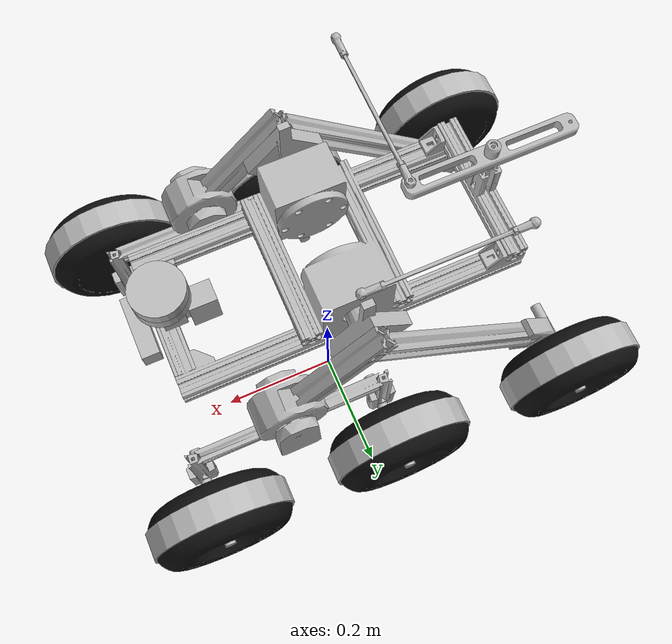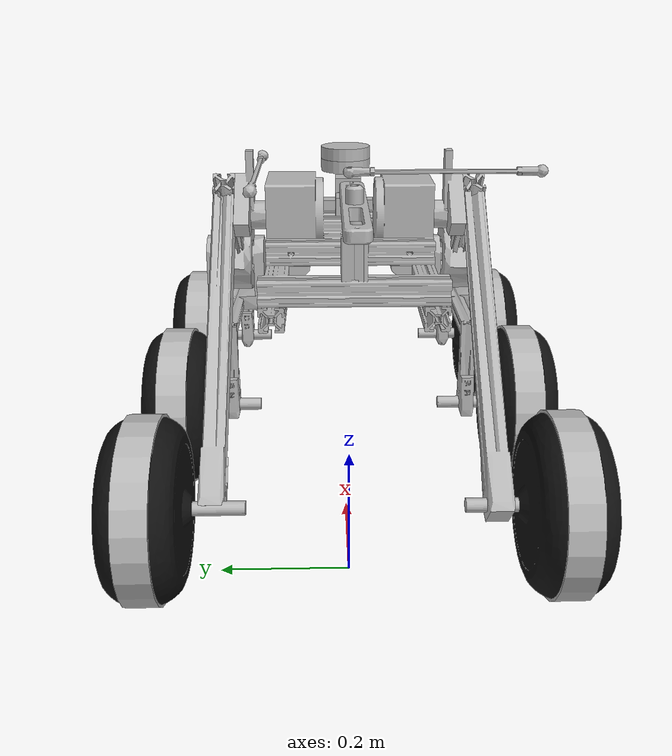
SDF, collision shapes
<?xml version='1.0'?>
<sdf version='1.5'>
  <model name="morty">
    <static>false</static>
    <pose>0 0 0.5 0 0 0</pose>

    <link name="frame">
      <pose>0 0 0 0 0 0</pose>

      <inertial>
        <pose>-0.007506 0.000432 0.042077 0 0 0</pose>
        <mass>10.0</mass>
        <inertia>
          <ixx>0.07759446</ixx>
          <iyy>0.134953099</iyy>
          <izz>0.182993088</izz>
          <ixz>0.004729512</ixz>
          <ixy>-0.000038673</ixy>
          <iyz>0.000110587</iyz>
        </inertia>
      </inertial>

      <collision name="collision">
        <pose>0 0 0 0 0 0</pose>
        <geometry>
          <mesh>
            <uri>model://morty/meshes/frame-lod-3.dae</uri>
          </mesh>
        </geometry>
      </collision>

      <visual name="visual">
        <geometry>
          <mesh>
            <uri>model://morty/meshes/frame-lod-2.dae</uri>
          </mesh>
        </geometry>
      </visual>
    </link>

    <!-- Left side. -->
    <link name="rocker_axis_left">
      <pose>0 0.075 0.065 0 0 3.141592654</pose>

      <inertial>
        <pose>-0.000000 -0.047414 0.007917 0 0 0</pose>
        <mass>0.5</mass>
        <inertia>
          <ixx>0.000581951</ixx>
          <iyy>0.00039783</iyy>
          <izz>0.00055294</izz>
          <ixy>0.0</ixy>
          <ixz>0.0</ixz>
          <iyz>0.000036374</iyz>
        </inertia>
      </inertial>

      <collision name="collision">
        <pose>0 0 0 0 0 0</pose>
        <geometry>
          <mesh>
            <uri>model://morty/meshes/rocker-axis-lod-1.dae</uri>
          </mesh>
        </geometry>
      </collision>

      <visual name="visual">
        <pose>0 0 0 0 0 0</pose>
        <geometry>
          <mesh>
            <uri>model://morty/meshes/rocker-axis-lod-2.dae</uri>
          </mesh>
        </geometry>
      </visual>
    </link>

    <link name="rocker_left_front">
      <pose>-0.01 0.167 0.111 0 0 3.141592654</pose>

      <inertial>
        <pose>-0.103843 0.000207 -0.080442 0 0 0</pose>
        <mass>1.5</mass>
        <inertia>
          <ixx>0.0091575</ixx>
          <iyy>0.01351175</iyy>
          <izz>0.00480425</izz>
          <ixy>0.000048607</ixy>
          <ixz>-0.005074536</ixz>
          <iyz>-0.00003325</iyz>
        </inertia>
      </inertial>

      <collision name="collision">
        <pose>0 0 0 0 0 0</pose>
        <geometry>
          <mesh>
            <uri>model://morty/meshes/rocker-front-lod-1.dae</uri>
          </mesh>
        </geometry>
      </collision>

      <visual name="visual">
        <geometry>
          <mesh>
            <uri>model://morty/meshes/rocker-front-lod-2.dae</uri>
          </mesh>
        </geometry>
      </visual>
    </link>

    <link name="rocker_left_rear">
      <pose>0.01 0.167 0.09 0 0 3.141592654</pose>

      <inertial>
        <pose>0.180409 -0.000496 -0.180775 0 0 0</pose>
        <mass>0.5</mass>
        <inertia>
          <ixx>0.004664009</ixx>
          <iyy>0.009240307</iyy>
          <izz>0.004668302</izz>
          <ixy>-0.000000849</ixy>
          <ixz>0.004392335</ixz>
          <iyz>0.000000165</iyz>
        </inertia>
      </inertial>

      <collision name="collision">
        <pose>0 0 0 0 0 0</pose>
        <geometry>
          <mesh>
            <uri>model://morty/meshes/rocker-rear-lod-1.dae</uri>
          </mesh>
        </geometry>
      </collision>

      <visual name="visual">
        <geometry>
          <mesh>
            <uri>model://morty/meshes/rocker-rear-lod-2.dae</uri>
          </mesh>
        </geometry>
      </visual>
    </link>

    <link name="bogie_left">
      <pose>0.128 0.167 -0.02625 0 0 0</pose>

      <inertial>
        <pose>-0.000000 -0.000283 -0.065016 0 0 0</pose>
        <mass>0.5</mass>
        <inertia>
          <ixx>0.001971824</ixx>
          <iyy>0.004614839</iyy>
          <izz>0.003279392</izz>
          <ixy>0.000000012</ixy>
          <ixz>0.0</ixz>
          <iyz>0.000009194</iyz>
        </inertia>
      </inertial>

      <collision name="collision">
        <geometry>
          <mesh>
            <uri>model://morty/meshes/bogie-lod-1.dae</uri>
          </mesh>
        </geometry>
      </collision>

      <visual name="visual">
        <geometry>
          <mesh>
            <uri>model://morty/meshes/bogie-lod-2.dae</uri>
          </mesh>
        </geometry>
      </visual>
    </link>

    <!-- Wheels -->
    <include>
      <uri>model://wheel_hhj30nt36v</uri>
      <pose>0.27477 0.14 -0.20783 1.570796327 0 0</pose>
      <name>wheel_left_front</name>
    </include>

    <include>
      <uri>model://wheel_hhj30nt36v</uri>
      <pose>-0.01596 0.14 -0.20783 1.570796327 0 0</pose>
      <name>wheel_left_middle</name>
    </include>

    <include>
      <uri>model://wheel_hhj30nt36v</uri>
      <pose>-0.30884 0.14 -0.20783 1.570796327 0 0</pose>
      <name>wheel_left_rear</name>
    </include>

    <!-- Joints. -->
    <joint type="revolute" name="left_frame_axis">
      <pose>0 0 0 0 0 0</pose>
      <parent>frame</parent>
      <child>rocker_axis_left</child>
      <axis>
        <xyz>0 1 0</xyz>
      </axis>
    </joint>
    <joint type="revolute" name="left_axis_rocker_rear">
      <pose>0 0 0 0 0 0</pose>
      <child>rocker_left_rear</child>
      <parent>rocker_axis_left</parent>
      <axis>
        <xyz>1 0 0</xyz>
        <limit>
          <lower>0</lower>
          <upper>0</upper>
        </limit>
      </axis>
    </joint>
    <joint type="revolute" name="left_axis_rocker_front">
      <pose>0 0 0 0 0 0</pose>
      <child>rocker_left_front</child>
      <parent>rocker_axis_left</parent>
      <axis>
        <xyz>1 0 0</xyz>
        <limit>
          <lower>0</lower>
          <upper>0</upper>
        </limit>
      </axis>
    </joint>
    <joint type="revolute" name="left_rocker_front_bogie">
      <pose>0 0 0 0 0 0</pose>
      <child>bogie_left</child>
      <parent>rocker_left_front</parent>
      <axis>
        <xyz>0 1 0</xyz>
        <limit>
          <lower>-0.785398163</lower>
          <upper>1.570796327</upper>
        </limit>
      </axis>
    </joint>
    <joint type="revolute" name="left_bogie_wheel_front">
      <pose>0 0 0.07 0 0 0</pose>
      <child>wheel_left_front::axis</child>
      <parent>bogie_left</parent>
      <axis>
        <xyz>1 0 0</xyz>
        <limit>
          <lower>0</lower>
          <upper>0</upper>
        </limit>
      </axis>
    </joint>
    <joint type="revolute" name="left_bogie_wheel_middle">
      <pose>0 0 0.07 0 0 0</pose>
      <child>wheel_left_middle::axis</child>
      <parent>bogie_left</parent>
      <axis>
        <xyz>1 0 0</xyz>
        <limit>
          <lower>0</lower>
          <upper>0</upper>
        </limit>
      </axis>
    </joint>
    <joint type="revolute" name="left_rocker_wheel_rear">
      <pose>0 0 0.07 0 0 0</pose>
      <child>wheel_left_rear::axis</child>
      <parent>rocker_left_rear</parent>
      <axis>
        <xyz>1 0 0</xyz>
        <limit>
          <lower>0</lower>
          <upper>0</upper>
        </limit>
      </axis>
    </joint>

    <!-- Right side. -->
    <link name="rocker_axis_right">
      <pose>0 -0.075 0.065 0 0 0</pose>

      <inertial>
        <pose>-0.000000 -0.047414 0.007917 0 0 0</pose>
        <mass>0.5</mass>
        <inertia>
          <ixx>0.000581951</ixx>
          <iyy>0.00039783</iyy>
          <izz>0.00055294</izz>
          <ixy>0.0</ixy>
          <ixz>0.0</ixz>
          <iyz>0.000036374</iyz>
        </inertia>
      </inertial>

      <collision name="collision">
        <pose>0 0 0 0 0 0</pose>
        <geometry>
          <mesh>
            <uri>model://morty/meshes/rocker-axis-lod-1.dae</uri>
          </mesh>
        </geometry>
      </collision>

      <visual name="visual">
        <pose>0 0 0 0 0 0</pose>
        <geometry>
          <mesh>
            <uri>model://morty/meshes/rocker-axis-lod-2.dae</uri>
          </mesh>
        </geometry>
      </visual>
    </link>

    <link name="rocker_right_front">
      <pose>-0.01 -0.167 0.111 0 0 3.141592654</pose>

      <inertial>
        <pose>-0.103843 0.000207 -0.080442 0 0 0</pose>
        <mass>1.5</mass>
        <inertia>
          <ixx>0.0091575</ixx>
          <iyy>0.01351175</iyy>
          <izz>0.00480425</izz>
          <ixy>0.000048607</ixy>
          <ixz>-0.005074536</ixz>
          <iyz>-0.00003325</iyz>
        </inertia>
      </inertial>

      <collision name="collision">
        <pose>0 0 0 0 0 0</pose>
        <geometry>
          <mesh>
            <uri>model://morty/meshes/rocker-front-lod-1.dae</uri>
          </mesh>
        </geometry>
      </collision>

      <visual name="visual">
        <geometry>
          <mesh>
            <uri>model://morty/meshes/rocker-front-lod-2.dae</uri>
          </mesh>
        </geometry>
      </visual>
    </link>

    <link name="rocker_right_rear">
      <pose>-0.01 -0.167 0.089 0 0 3.141592654</pose>

      <inertial>
        <pose>0.180409 -0.000496 -0.180775 0 0 0</pose>
        <mass>0.5</mass>
        <inertia>
          <ixx>0.004664009</ixx>
          <iyy>0.009240307</iyy>
          <izz>0.004668302</izz>
          <ixy>-0.000000849</ixy>
          <ixz>0.004392335</ixz>
          <iyz>0.000000165</iyz>
        </inertia>
      </inertial>

      <collision name="collision">
        <pose>0 0 0 0 0 0</pose>
        <geometry>
          <mesh>
            <uri>model://morty/meshes/rocker-rear-lod-1.dae</uri>
          </mesh>
        </geometry>
      </collision>

      <visual name="visual">
        <geometry>
          <mesh>
            <uri>model://morty/meshes/rocker-rear-lod-2.dae</uri>
          </mesh>
        </geometry>
      </visual>
    </link>

    <link name="bogie_right">
      <pose>0.128 -0.167 -0.02625 0 0 0</pose>

      <inertial>
        <pose>-0.000000 -0.000283 -0.065016 0 0 0</pose>
        <mass>0.5</mass>
        <inertia>
          <ixx>0.001971824</ixx>
          <iyy>0.004614839</iyy>
          <izz>0.003279392</izz>
          <ixy>0.000000012</ixy>
          <ixz>0.0</ixz>
          <iyz>0.000009194</iyz>
        </inertia>
      </inertial>

      <collision name="collision">
        <geometry>
          <mesh>
            <uri>model://morty/meshes/bogie-lod-1.dae</uri>
          </mesh>
        </geometry>
      </collision>

      <visual name="visual">
        <geometry>
          <mesh>
            <uri>model://morty/meshes/bogie-lod-2.dae</uri>
          </mesh>
        </geometry>
      </visual>
    </link>

    <!-- Wheels -->
    <include>
      <uri>model://wheel_hhj30nt36v</uri>
      <pose>0.27477 -0.14 -0.20783 -1.570796327 0 0</pose>
      <name>wheel_right_front</name>
    </include>

    <include>
      <uri>model://wheel_hhj30nt36v</uri>
      <pose>-0.01596 -0.14 -0.20783 -1.570796327 0 0</pose>
      <name>wheel_right_middle</name>
    </include>

    <include>
      <uri>model://wheel_hhj30nt36v</uri>
      <pose>-0.30884 -0.14 -0.20783 -1.570796327 0 0</pose>
      <name>wheel_right_rear</name>
    </include>

    <!-- Joints. -->
    <joint type="revolute" name="right_frame_axis">
      <pose>0 0 0 0 0 0</pose>
      <parent>frame</parent>
      <child>rocker_axis_right</child>
      <axis>
        <xyz>0 1 0</xyz>
      </axis>
    </joint>
    <joint type="revolute" name="right_axis_rocker_rear">
      <pose>0 0 0 0 0 0</pose>
      <child>rocker_right_rear</child>
      <parent>rocker_axis_right</parent>
      <axis>
        <xyz>1 0 0</xyz>
        <limit>
          <lower>0</lower>
          <upper>0</upper>
        </limit>
      </axis>
    </joint>
    <joint type="revolute" name="right_axis_rocker_front">
      <pose>0 0 0 0 0 0</pose>
      <child>rocker_right_front</child>
      <parent>rocker_axis_right</parent>
      <axis>
        <xyz>1 0 0</xyz>
        <limit>
          <lower>0</lower>
          <upper>0</upper>
        </limit>
      </axis>
    </joint>
    <joint type="revolute" name="right_rocker_front_bogie">
      <pose>0 0 0 0 0 0</pose>
      <child>bogie_right</child>
      <parent>rocker_right_front</parent>
      <axis>
        <xyz>0 1 0</xyz>
        <limit>
          <lower>-0.785398163</lower>
          <upper>1.570796327</upper>
        </limit>
      </axis>
    </joint>
    <joint type="revolute" name="right_bogie_wheel_front">
      <pose>0 0 0.07 0 0 0</pose>
      <child>wheel_right_front::axis</child>
      <parent>bogie_right</parent>
      <axis>
        <xyz>1 0 0</xyz>
        <limit>
          <lower>0</lower>
          <upper>0</upper>
        </limit>
      </axis>
    </joint>
    <joint type="revolute" name="right_bogie_wheel_middle">
      <pose>0 0 0.07 0 0 0</pose>
      <child>wheel_right_middle::axis</child>
      <parent>bogie_right</parent>
      <axis>
        <xyz>1 0 0</xyz>
        <limit>
          <lower>0</lower>
          <upper>0</upper>
        </limit>
      </axis>
    </joint>
    <joint type="revolute" name="right_rocker_wheel_rear">
      <pose>0 0 0.07 0 0 0</pose>
      <child>wheel_right_rear::axis</child>
      <parent>rocker_right_rear</parent>
      <axis>
        <xyz>1 0 0</xyz>
        <limit>
          <lower>0</lower>
          <upper>0</upper>
        </limit>
      </axis>
    </joint>

    <!-- Diff -->
    <!-- Sensors -->
    <link name="diff_connector">
      <pose>-0.2348023 0 0.1239466 0 0 0</pose>

      <inertial>
        <pose>-0.000000 -0.000001 0.000466 0 0 0</pose>
        <mass>0.1</mass>
        <inertia>
          <ixx>0.000574568</ixx>
          <iyy>0.000012108</iyy>
          <izz>0.000581622</izz>
          <ixy>0.0</ixy>
          <ixz>0.0</ixz>
          <iyz>-0.000000041</iyz>
        </inertia>
      </inertial>

      <visual name="visual">
        <pose>0 0 0 0 0 0</pose>
        <geometry>
          <mesh>
            <uri>model://morty/meshes/diff-connector-lod-2.dae</uri>
          </mesh>
        </geometry>
      </visual>

      <collision name="collision">
        <pose>0 0 0 0 0 0</pose>
        <geometry>
          <mesh>
            <uri>model://morty/meshes/diff-connector-lod-1.dae</uri>
          </mesh>
        </geometry>
      </collision>

    </link>

    <link name="diff_bar_left">
      <pose>-0.1170713 0.115 0.1441726 0 0 0</pose>

      <inertial>
        <pose>-0.000022 -0.000077 -0.000075 0 0 0</pose>
        <mass>0.1</mass>
        <inertia>
          <ixx>0.000001273</ixx>
          <iyy>0.000770182</iyy>
          <izz>0.000770091</izz>
          <ixy>0.000000909</ixy>
          <ixz>-0.000000909</ixz>
          <iyz>0.0</iyz>
        </inertia>
      </inertial>

      <visual name="visual">
        <pose>0 0 0 0 0 0</pose>
        <geometry>
          <mesh>
            <uri>model://morty/meshes/diff-bar-left-lod-2.dae</uri>
          </mesh>
        </geometry>
      </visual>

      <collision name="collision">
        <pose>0 0 0 0 0 0</pose>
        <geometry>
          <mesh>
            <uri>model://morty/meshes/diff-bar-left-lod-1.dae</uri>
          </mesh>
        </geometry>
      </collision>
    </link>

    <link name="diff_bar_right">
      <pose>-0.1170713 -0.115 0.1441726 0 0 0</pose>

      <inertial>
        <pose>-0.000022 -0.000077 -0.000075 0 0 0</pose>
        <mass>0.1</mass>
        <inertia>
          <ixx>0.000001273</ixx>
          <iyy>0.000770182</iyy>
          <izz>0.000770091</izz>
          <ixy>0.000000909</ixy>
          <ixz>-0.000000909</ixz>
          <iyz>0.0</iyz>
        </inertia>
      </inertial>

      <visual name="visual">
        <pose>0 0 0 0 0 0</pose>
        <geometry>
          <mesh>
            <uri>model://morty/meshes/diff-bar-right-lod-2.dae</uri>
          </mesh>
        </geometry>
      </visual>

      <collision name="collision">
        <pose>0 0 0 0 0 0</pose>
        <geometry>
          <mesh>
            <uri>model://morty/meshes/diff-bar-right-lod-1.dae</uri>
          </mesh>
        </geometry>
      </collision>

    </link>

    <joint type="revolute" name="frame_diff">
      <child>diff_connector</child>
      <parent>frame</parent>
      <axis>
        <xyz>0 0 1</xyz>
      </axis>
    </joint>
    <joint type="ball" name="diff_connector_bar_left">
      <pose>0.1168 0 0 0 0 0</pose>
      <child>diff_bar_left</child>
      <parent>diff_connector</parent>
    </joint>
    <joint type="ball" name="diff_bar_rocker_left">
      <pose>-0.1170713 0 0 0 0 0</pose>
      <child>diff_bar_left</child>
      <parent>rocker_axis_left</parent>
    </joint>
    <joint type="ball" name="diff_connector_bar_right">
      <pose>0.1168 0 0 0 0 0</pose>
      <child>diff_bar_right</child>
      <parent>diff_connector</parent>
    </joint>
    <joint type="ball" name="diff_bar_rocker_right">
      <pose>-0.1170713 0 0 0 0 0</pose>
      <child>diff_bar_right</child>
      <parent>rocker_axis_right</parent>
    </joint>

    <include>
      <uri>model://laser_leveling</uri>
      <pose>0.2 0 0 0 0 0</pose>
      <parent>frame</parent>
    </include>
    <include>
      <uri>model://rplidar_a2_m6</uri>
      <pose>0.226 0 0.085 0 0 0</pose>
      <parent>laser_leveling</parent>
    </include>
    <include>
      <uri>model://logitech_c920</uri>
      <pose>0.28 0 0 0 0 0</pose>
      <parent>frame</parent>
    </include>

    <!-- Joints for the sensors. -->
    <joint type="fixed" name="mount_leveling">
      <child>laser_leveling::dynamixel_roll</child>
      <parent>frame</parent>
    </joint>
    <joint type="fixed" name="laser_leveling">
      <child>rplidar_a2_m6::case</child>
      <parent>laser_leveling::mount_dynamixel_pitch</parent>
    </joint>
    <joint type="fixed" name="mount_camera">
      <child>logitech_c920::case</child>
      <parent>frame</parent>
    </joint>

    <plugin name="morty_motor_controller" filename="libgazebo-francor-morty-motor-controller-plugin.so">
      <motorLeftFrontJoint>wheel_left_front::motor</motorLeftFrontJoint>
      <motorLeftMidJoint>wheel_left_middle::motor</motorLeftMidJoint>
      <motorLeftRearJoint>wheel_left_rear::motor</motorLeftRearJoint>
      <motorRightFrontJoint>wheel_right_front::motor</motorRightFrontJoint>
      <motorRightMidJoint>wheel_right_middle::motor</motorRightMidJoint>
      <motorRightRearJoint>wheel_right_rear::motor</motorRightRearJoint>

      <motorLeftFrontPos>0.27477 0.17 0</motorLeftFrontPos>
      <motorLeftMidPos>0.01596 0.17 0</motorLeftMidPos>
      <motorLeftRearPos>-0.30884 0.17 0</motorLeftRearPos>
      <motorRightFrontPos>0.27477 -0.17 0</motorRightFrontPos>
      <motorRightMidPos>0.01596 -0.17 0</motorRightMidPos>
      <motorRightRearPos>-0.30884 -0.17 0</motorRightRearPos>

      <motorLeftFrontDiameter>0.22</motorLeftFrontDiameter>
      <motorLeftMidDiameter>0.22</motorLeftMidDiameter>
      <motorLeftRearDiameter>0.22</motorLeftRearDiameter>
      <motorRightFrontDiameter>0.22</motorRightFrontDiameter>
      <motorRightMidDiameter>0.22</motorRightMidDiameter>
      <motorRightRearDiameter>0.22</motorRightRearDiameter>

      <rosNamespace>morty</rosNamespace>
      <velocityTopic>velocity</velocityTopic>
      <odometryTopic>odom</odometryTopic>
    </plugin>

  </model>
</sdf>

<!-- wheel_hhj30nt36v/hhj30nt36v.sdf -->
<sdf version='1.5'>
  <model name="wheel_hhj30nt36v">
    <static>false</static>
    <pose>0 0 0 0 0 0</pose>

    <!-- The axis of this wheel. -->
    <link name="axis">
      <pose>0 0 -0.1 0 0 0</pose>

      <inertial>
        <pose>0 0 0.0464 0 0 0</pose>
        <mass>0.3</mass>
        <inertia>
          <ixx>0.00055056</ixx>
          <iyy>0.00055086</iyy>
          <izz>0.00001032</izz>
          <ixy>0.0</ixy>
          <ixz>0.0</ixz>
          <iyz>-0.00000345</iyz>
        </inertia>
      </inertial>

      <collision name="collision">
        <pose>0 0 0.0364 0 0 0</pose>
        <geometry>
          <cylinder>
            <radius>0.0084</radius>
            <length>0.1528</length>
          </cylinder>
        </geometry>
      </collision>

      <visual name="visual">
        <pose>0 0 0 0 0 0</pose>
        <geometry>
          <mesh>
            <uri>model://wheel_hhj30nt36v/meshes/axis.dae</uri>
          </mesh>
        </geometry>
      </visual>
    </link>

    <!-- The rotating part of this wheel. -->
    <link name="wheel">
      <pose>0 0 -0.1 0 0 0</pose>

      <inertial>
        <pose>-0.000000 -0.000000 0.002033 0 0 0</pose>
        <mass>3.7</mass>
        <inertia>
          <ixx>0.012247851</ixx>
          <iyy>0.012247851</iyy>
          <izz>0.020656847</izz>
          <ixy>0.0</ixy>
          <ixz>0.0</ixz>
          <iyz>0.0</iyz>
        </inertia>
      </inertial>

      <collision name="collision">
        <pose>0 0 0 0 0 0</pose>
        <geometry>
          <cylinder>
            <radius>0.11</radius>
            <length>0.04</length>
          </cylinder>
        </geometry>
        <max_contacts>10</max_contacts>
        <surface>
          <friction>
            <torsional>
              <coefficient>0.5</coefficient>
              <surface_radius>0.11</surface_radius>
              <use_patch_radius>false</use_patch_radius>
              <ode>
                <slip>0.02</slip>
              </ode>
            </torsional>
            <ode>
              <mu>0.45</mu>
              <mu2>0.45</mu2>
              <fdir1>1 1 1</fdir1> <!-- TODO: not clear what happen if two axes are used. -->
              <slip1>0.02</slip1>
              <slip2>0.02</slip2>
            </ode>
          </friction>
          <contact>
            <ode>
              <min_depth>0.005</min_depth>
            </ode>
          </contact>
        </surface>
      </collision>

      <collision name="side">
        <pose>0 0 0 0 0 0</pose>
        <geometry>
          <mesh>
            <uri>model://wheel_hhj30nt36v/meshes/wheel-lod-1.dae</uri>
          </mesh>
        </geometry>
        <max_contacts>10</max_contacts>
        <surface>
          <friction>
            <torsional>
              <coefficient>0.5</coefficient>
              <surface_radius>0.11</surface_radius>
              <use_patch_radius>false</use_patch_radius>
              <ode>
                <slip>0.02</slip>
              </ode>
            </torsional>
            <ode>
              <mu>0.5</mu>
              <mu2>0.5</mu2>
              <fdir1>1 1 1</fdir1> <!-- TODO: not clear what happen if two axes are used. -->
              <slip1>0.02</slip1>
              <slip2>0.02</slip2>
            </ode>
          </friction>
          <contact>
            <ode>
              <min_depth>0.01</min_depth>
            </ode>
          </contact>
        </surface>
      </collision>

      <visual name="visual">
        <pose>0 0 0 0 0 0</pose>
        <geometry>
          <mesh>
            <uri>model://wheel_hhj30nt36v/meshes/wheel.dae</uri>
          </mesh>
        </geometry>
      </visual>
    </link>

    <!-- The motor joint of this wheel. -->
    <joint type="revolute" name="motor">
      <pose>0 0 0 0 0 0</pose>
      <child>wheel</child>
      <parent>axis</parent>
      <axis>
        <use_parent_model_frame>true</use_parent_model_frame>
        <xyz>0 0 1</xyz>
      </axis>
    </joint>

  </model>
</sdf>

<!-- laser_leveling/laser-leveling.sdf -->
<sdf version='1.5'>
  <model name="laser_leveling">
    <static>false</static>

    <link name="dynamixel_roll">
      <pose>0 0 0.0385 0 0 0</pose>

      <inertial>
        <pose>-0.016060 0.000006 -0.013540 0 0 0</pose>
        <mass>0.06</mass>
        <inertia>
          <ixx>0.002137e-2</ixx>
          <iyy>0.002384e-2</iyy>
          <izz>0.001158e-2</izz>
          <ixy>0</ixy>
          <ixz>0</ixz>
          <ixz>-0.000001e-2</ixz>
        </inertia>
      </inertial>

      <collision name="collision">
        <pose>-0.02 0 -0.015 0 0 0</pose>
        <geometry>
          <box>
            <size>0.04 0.032 0.06</size>
          </box>
        </geometry>
      </collision>

      <visual name="visual">
        <geometry>
          <mesh>
            <uri>model://laser_leveling/meshes/dynamixel_ax12a.dae</uri>
          </mesh>
        </geometry>
      </visual>
    </link>

    <link name="dynamixel_pitch">
      <pose>0.022 0.016 0.06 0 0 1.570796327</pose>

      <inertial>
        <pose>-0.016060 0.000006 -0.013540 0 0 0</pose>
        <mass>0.06</mass>
        <inertia>
          <ixx>0.002137e-2</ixx>
          <iyy>0.002384e-2</iyy>
          <izz>0.001158e-2</izz>
          <ixy>0</ixy>
          <ixz>0</ixz>
          <ixz>-0.000001e-2</ixz>
        </inertia>
      </inertial>

      <collision name="collision">
        <pose>-0.02 0 -0.015 0 0 0</pose>
        <geometry>
          <box>
            <size>0.04 0.032 0.06</size>
          </box>
        </geometry>
      </collision>

      <visual name="visual">
        <geometry>
          <mesh>
            <uri>model://laser_leveling/meshes/dynamixel_ax12a.dae</uri>
          </mesh>
        </geometry>
      </visual>
    </link>

    <link name="mount_dynamixel_roll">
      <pose>0 0 0.0385 0 0 0</pose>

      <inertial>
        <pose>0.005832 -0.000000 0.001146 0 0 0</pose>
        <mass>0.01</mass>
        <inertia>
          <ixx>0.000087e-2</ixx>
          <iyy>0.000051e-2</iyy>
          <izz>0.000047e-2</izz>
          <ixy>0</ixy>
          <ixz>-0.000002e-2</ixz>
          <iyz>0</iyz>
        </inertia>
      </inertial>

      <collision name="collision">
        <pose>0.0045 0 0 0 0 0</pose>
        <geometry>
          <box>
            <size>0.009 0.026 0.03</size>
          </box>
        </geometry>
      </collision>

      <visual name="visual">
        <geometry>
          <mesh>
            <uri>model://laser_leveling/meshes/dynamixel_ax12a_mount_side.dae</uri>
          </mesh>
        </geometry>
      </visual>
    </link>

    <link name="mount_dynamixel_pitch">
      <pose>0.022 0.016 0.06 0 0 1.570796327</pose>

      <inertial>
        <pose>-0.011189 -0.000000 0.010418 0 0 0</pose>
        <mass>0.01</mass>
        <inertia>
          <ixx>0.000453e-3</ixx>
          <iyy>0.001079e-3</iyy>
          <izz>0.000949e-3</izz>
          <ixy>0</ixy>
          <ixz>0.000073e-3</ixz>
          <iyz>0</iyz>
        </inertia>
      </inertial>

      <visual name="visual">
        <geometry>
          <mesh>
            <uri>model://laser_leveling/meshes/dynamixel_ax12a_mount.dae</uri>
          </mesh>
        </geometry>
      </visual>
    </link>

    <!-- Joints -->
    <joint name="roll" type="revolute">
      <pose>0 0 0 0 0 0</pose>
      <child>mount_dynamixel_roll</child>
      <parent>dynamixel_roll</parent>
      <use_parent_model_frame>true</use_parent_model_frame>
      <axis>
        <xyz>1 0 0</xyz>
        <limit>
          <lower>-1.570796327</lower>
          <upper>1.570796327</upper>
        </limit>
        <dynamics>
          <friction>0.01</friction>
        </dynamics>
      </axis>
    </joint>

    <joint name="mount_roll_pitch" type="fixed">
      <child>dynamixel_pitch</child>
      <parent>mount_dynamixel_roll</parent>
    </joint>

    <joint name="pitch" type="revolute">
      <pose>0 0 0 0 0 0</pose>
      <child>mount_dynamixel_pitch</child>
      <parent>dynamixel_pitch</parent>
      <use_parent_model_frame>true</use_parent_model_frame>
      <axis>
        <xyz>1 0 0</xyz>
        <limit>
          <lower>-1.570796327</lower>
          <upper>1.570796327</upper>
        </limit>
        <dynamics>
          <friction>0.01</friction>
        </dynamics>
      </axis>
    </joint>

    <plugin name="controller" filename="libgazebo-francor-laser-leveling-plugin.so">
      <jointServoRoll>roll</jointServoRoll>
      <jointServoPitch>pitch</jointServoPitch>
    </plugin>
  </model>
</sdf>

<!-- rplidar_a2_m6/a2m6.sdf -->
<sdf version='1.5'>
  <model name="rplidar_a2_m6">
    <static>false</static>

    <link name="case">
      <pose>0 0 0 0 0 0</pose>

      <inertial>
        <pose>0.000000 -0.000000 0.009300 0 0 0</pose>
        <mass>0.2</mass>
        <inertia>
          <ixx>0.006399e-2</ixx>
          <iyy>0.006399e-2</iyy>
          <izz>0.011840e-2</izz>
          <ixy>0.0</ixy>
          <ixz>0.0</ixz>
          <iyz>0.0</iyz>
        </inertia>
      </inertial>

      <collision name="collision">
        <pose>0 0 0.0093 0 0 0</pose>
        <geometry>
          <cylinder>
            <radius>0.03785</radius>
            <length>0.0186</length>
          </cylinder>
        </geometry>
      </collision>

      <visual name="visual">
        <pose>0 0 0 0 0 0</pose>
        <geometry>
          <mesh>
            <uri>model://rplidar_a2_m6/meshes/rplidar_a2.dae</uri>
          </mesh>
        </geometry>
      </visual>
    </link>

    <link name="sensor">
      <pose>0 0 0.0186 0 0 0</pose>

      <inertial>
        <pose>0.000000 -0.000000 0.009300 0 0 0</pose>
        <mass>0.1</mass>
        <inertia>
          <ixx>0.006399e-2</ixx>
          <iyy>0.006399e-2</iyy>
          <izz>0.011840e-2</izz>
          <ixy>0.0</ixy>
          <ixz>0.0</ixz>
          <iyz>0.0</iyz>
        </inertia>
      </inertial>

      <collision name="collision">
        <pose>0 0 0.0093 0 0 0</pose>
        <geometry>
          <cylinder>
            <radius>0.03785</radius>
            <length>0.0186</length>
          </cylinder>
        </geometry>
      </collision>

      <visual name="visual">
        <pose>0 0 0 0 0 0</pose>
        <geometry>
          <mesh>
            <uri>model://rplidar_a2_m6/meshes/rplidar_a2.dae</uri>
          </mesh>
        </geometry>
      </visual>

      <sensor type="gpu_ray" name="laser">
        <pose>0 0 0.04 0 0 0</pose>
        <visualize>false</visualize>
        <update_rate>10</update_rate>
        <ray>
          <scan>
            <horizontal>
              <samples>1024</samples>
              <resolution>1</resolution>
              <min_angle>-3.14</min_angle>
              <max_angle> 3.14</max_angle>
            </horizontal>
          </scan>
          <range>
            <min>0.15</min>
            <max>20.0</max>
            <resolution>0.03</resolution>
          </range>
          <noise>
            <type>gaussian</type>
            <mean>0.0</mean>
            <stddev>0.02</stddev>
          </noise>
        </ray>
        <plugin name="laser_plugin" filename="libgazebo_ros_gpu_laser.so">
          <topicName>/morty/scan</topicName>
          <frameName>rplidar</frameName>
        </plugin>
      </sensor>
    </link>

    <joint type="fixed" name="sensor_case">
      <child>sensor</child>
      <parent>case</parent>
    </joint>

  </model>
</sdf>

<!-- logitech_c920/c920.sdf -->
<sdf version='1.5'>
  <model name="logitech_c920">
    <static>false</static>

    <link name="case">
      <pose>0 0 0 0 0 0</pose>

      <inertial>
        <pose>-0.014967 -0.036505 0.000000 0 0 0</pose>
        <mass>0.1</mass>
        <inertia>
          <ixx>0.003100e-5</ixx>
          <iyy>0.000103e-5</iyy>
          <izz>0.003203e-5</izz>
          <ixy>0.000109e-5</ixy>
          <ixz>0</ixz>
          <iyz>0.002024e-5</iyz>
        </inertia>
      </inertial>

      <collision name="collision">
        <pose>-0.0125 0 0.015 0 0 0</pose>
        <geometry>
          <box>
            <size>0.025 0.09 0.03</size>
          </box>
        </geometry>
      </collision>

      <visual name="visual">
        <geometry>
          <mesh>
            <uri>model://logitech_c920/meshes/c920.dae</uri>
          </mesh>
        </geometry>
      </visual>
      <sensor name="monocular" type="camera">
        <update_rate>20</update_rate>
        <camera name="webcam">
          <image>
            <width>1024</width>
            <height>768</height>
            <format>R8G8B8</format>
          </image>
        </camera>
        <plugin name="camera_rendering" filename="libgazebo_ros_camera.so">
          <cameraName>logitech_c920</cameraName>
        </plugin>
      </sensor>
    </link>

  </model>
</sdf>
